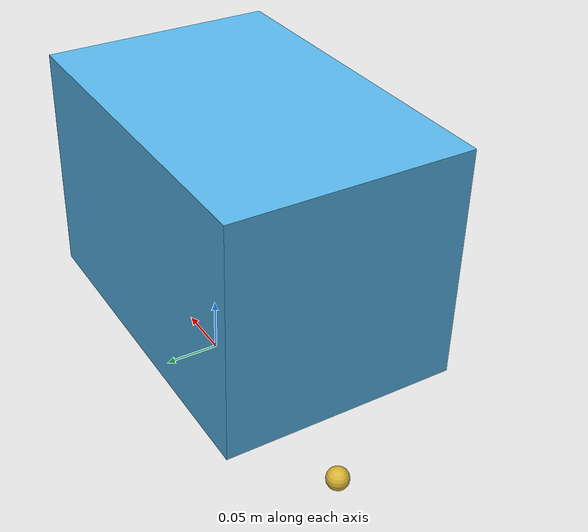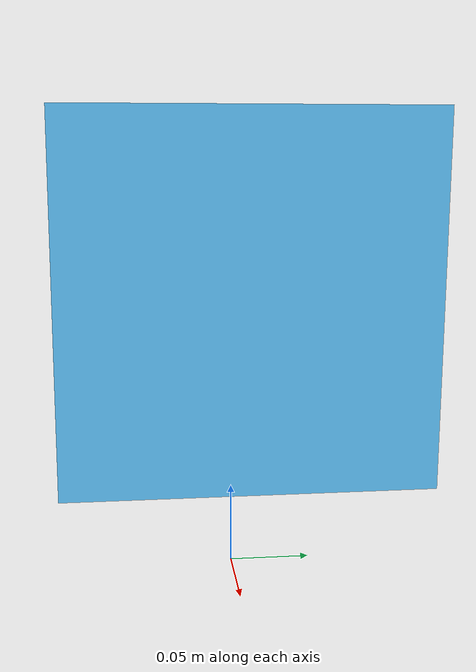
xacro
<?xml version="1.0"?>
<robot name="budget_roomba" xmlns:xacro="http://www.ros.org/wiki/xacro">
  <xacro:macro name="dummy_inertia">
    <inertial>
      <origin xyz="0 0 0.0" rpy="0 0 0"/>
      <mass value="1e-2"/>
      <inertia ixx="1e-3" ixy="0" ixz="0" iyy="1e-3" iyz="0" izz="1e-3"/>
    </inertial>
  </xacro:macro>
  <xacro:include filename="$(find br_description)/urdf/motion/diffdrive.xacro" />
  <xacro:include filename="$(find br_description)/urdf/sensors/imu.xacro" />
  <xacro:include filename="$(find br_description)/urdf/sensors/raspberry_pi_camera_2_1.xacro" />
  <xacro:include filename="$(find br_description)/urdf/sensors/rplidar_a1m8.xacro" />
  <xacro:include filename="$(find br_description)/urdf/sensors/nav_unit.xacro" />

  <xacro:arg name="sim" default="true"/>
  <xacro:arg name="ground_truth_tf" default="false"/>

  <link name="base_link">

  </link>

  <joint name="base_link_to_main_body" type="fixed">
    <parent link="base_link"/>
    <child link="main_body"/>
    <origin xyz="0 0 0.05"/>
  </joint>

  <link name="main_body">
    <inertial>
      <origin xyz="0 0 0.0" rpy="0 0 0"/>
      <mass value="3"/>
      <inertia ixx="1e-2" ixy="0" ixz="0" iyy="1e-2" iyz="0" izz="1e-2"/>
    </inertial>
    <visual>
      <origin rpy="0 0 0" xyz="-0.055 0 0.13"/>
      <geometry>
        <box size="0.3 0.2 0.2"/>
      </geometry>
    </visual>
    <collision>
      <origin rpy="0 0 0" xyz="-0.055 0 0.13"/>
      <geometry>
        <box size="0.3 0.2 0.2"/>
      </geometry>
    </collision>
  </link>
  <joint name="main_body_to_back_ball" type="fixed">
    <parent link="base_link"/>
    <child link="back_ball"/>
    <origin xyz="-0.205 0 0" rpy="0 0 0"/>
  </joint>

  <link name="back_ball">
    <inertial>
      <origin xyz="0 0 0.0" rpy="0 0 0"/>
      <mass value="1e-1"/>
      <inertia ixx="1e-3" ixy="0" ixz="0" iyy="1e-3" iyz="0" izz="1e-3"/>
    </inertial>
    <visual>
      <origin rpy="0 0 0" xyz="0 0 0.01 "/>
      <geometry>
        <sphere radius="0.01"/>
      </geometry>
    </visual>
    <collision>
      <origin rpy="0 0 0" xyz="0 0 0.01 "/>
      <geometry>
        <sphere radius="0.01"/>
      </geometry>
    </collision>
  </link>
  <xacro:if value="$(arg sim)">
    <gazebo reference="back_ball">
          <material>Gazebo/Gold</material>
          <mu1>0.0</mu1>
          <mu2>0.0</mu2>
      </gazebo>
    <gazebo reference="main_body_to_back_ball">
      <preserveFixedJoint>true</preserveFixedJoint>
    </gazebo>
    <xacro:if value="$(arg ground_truth_tf)">
      <gazebo>
            <plugin name="budget_roomba_ros_plugin" filename="libbudget_roomba_ros_plugin.so">
              <world_frame_id>world</world_frame_id>
              <robot_base_frame_id>base_link</robot_base_frame_id>
              <ground_truth_tf>true</ground_truth_tf>
            </plugin>
      </gazebo>
    </xacro:if>
  </xacro:if>

    <xacro:nav_unit parent="base_link">
      <origin xyz="-0.18 0 0.235" rpy="0 0 3.14"/>
    </xacro:nav_unit>

</robot>

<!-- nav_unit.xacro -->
<robot xmlns:xacro="http://www.ros.org/wiki/xacro">
    <xacro:macro name="nav_unit" params="*origin parent prefix:='nav_unit'">
        <joint name="${parent}_to_${prefix}base_link" type="fixed">
            <parent link="${parent}"/>
            <child link="${prefix}base_link"/>
            <xacro:insert_block name="origin" />
        </joint>
        <link name="${prefix}base_link"/>
        <joint name="${prefix}base_link_to_imu" type="fixed">
            <parent link="${prefix}base_link"/>
            <child link="imu_sensor_link"/>
            <origin rpy="0 0 3.1415" xyz="0.053 0 0.001"/>

        </joint>
        <joint name="${prefix}base_link_to_lidar" type="fixed">
            <parent link="${prefix}base_link"/>
            <child link="lidar_sensor_link"/>
            <origin rpy="0 0 3.1415" xyz="0 0 0.045"/>

        </joint>
        <link name="lidar_sensor_link"/>
        <link name="imu_sensor_link"/>

    </xacro:macro>

</robot>
